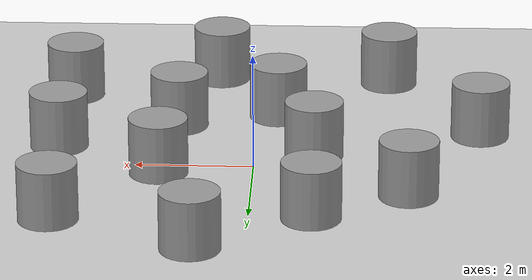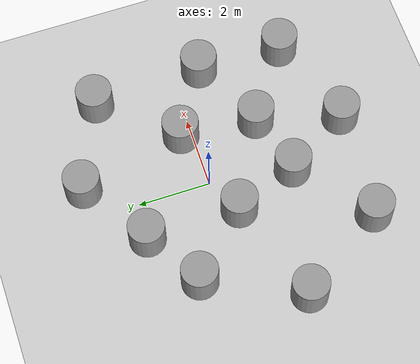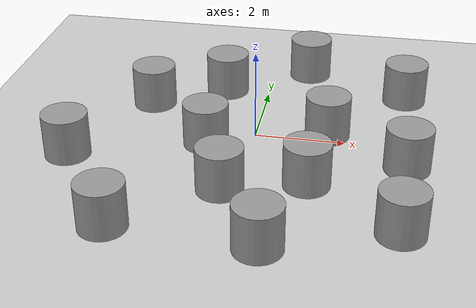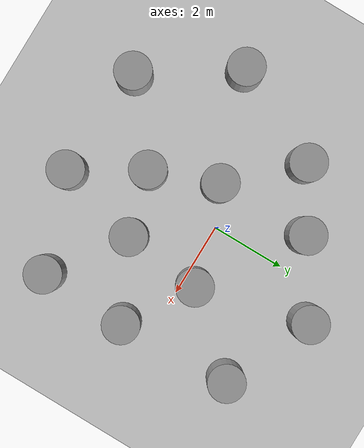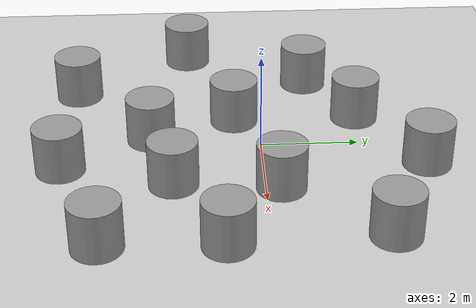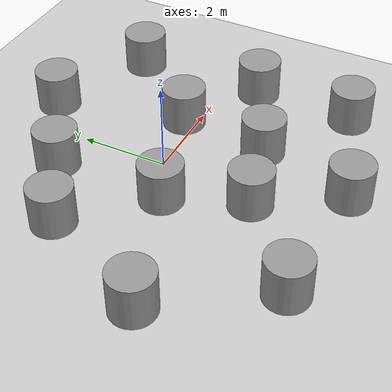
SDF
<sdf version="1.7">
 <world name="default">
  <light name="sun" type="directional">
   <cast_shadows>0</cast_shadows>
   <pose>0 0 10 0 -0 0</pose>
   <diffuse>0.8 0.8 0.8 1</diffuse>
   <specular>0.2 0.2 0.2 1</specular>
   <attenuation>
    <range>1000</range>
    <constant>0.9</constant>
    <linear>0.01</linear>
    <quadratic>0.001</quadratic>
   </attenuation>
   <direction>-0.5 0.1 -0.9</direction>
   <spot><inner_angle>0</inner_angle><outer_angle>0</outer_angle><falloff>0</falloff></spot>
  </light>
  <model name="ground_plane">
   <static>1</static>
   <link name="link">
    <collision name="collision">
     <geometry><plane><normal>0 0 1</normal><size>100 100</size></plane></geometry>
     <surface><friction><ode><mu>100</mu><mu2>50</mu2></ode></friction></surface>
    </collision>
    <visual name="visual">
     <cast_shadows>0</cast_shadows>
     <geometry><plane><normal>0 0 1</normal><size>100 100</size></plane></geometry>
     <material>
      <script><uri>file://media/materials/scripts/gazebo.material</uri><name>Gazebo/Grey</name></script>
     </material>
    </visual>
   </link>
  </model>
  <gravity>0 0 -9.8</gravity>
  <magnetic_field>6e-06 2.3e-05 -4.2e-05</magnetic_field>
  <atmosphere type="adiabatic"/>
  <physics type="ode">
   <max_step_size>0.001</max_step_size>
   <real_time_factor>1</real_time_factor>
   <real_time_update_rate>3000</real_time_update_rate>
  </physics>
  <scene><ambient>0.4 0.4 0.4 1</ambient><background>0.7 0.7 0.7 1</background><shadows>0</shadows></scene>
  <audio><device>default</device></audio>
  <spherical_coordinates>
   <surface_model>EARTH_WGS84</surface_model>
   <latitude_deg>0</latitude_deg>
   <longitude_deg>0</longitude_deg>
   <elevation>0</elevation>
   <heading_deg>0</heading_deg>
  </spherical_coordinates>
  <model name="unit_cylinder">
   <pose>1.36427 -1.79255 0.499992 -3e-06 3e-06 0</pose>
   <link name="link">
    <inertial>
     <mass>1</mass>
     <inertia><ixx>0.145833</ixx><ixy>0</ixy><ixz>0</ixz><iyy>0.145833</iyy><iyz>0</iyz><izz>0.125</izz></inertia>
    </inertial>
    <collision name="collision">
     <geometry><cylinder><radius>0.5</radius><length>1</length></cylinder></geometry>
    </collision>
    <visual name="visual">
     <geometry><cylinder><radius>0.5</radius><length>1</length></cylinder></geometry>
     <material>
      <script><name>Gazebo/Grey</name><uri>file://media/materials/scripts/gazebo.material</uri></script>
     </material>
    </visual>
   </link>
  </model>
  <model name="unit_cylinder_0">
   <pose>1.58285 0.303932 0.499998 3e-06 -3e-06 0</pose>
   <link name="link">
    <inertial>
     <mass>1</mass>
     <inertia><ixx>0.145833</ixx><ixy>0</ixy><ixz>0</ixz><iyy>0.145833</iyy><iyz>0</iyz><izz>0.125</izz></inertia>
    </inertial>
    <collision name="collision">
     <geometry><cylinder><radius>0.5</radius><length>1</length></cylinder></geometry>
    </collision>
    <visual name="visual">
     <geometry><cylinder><radius>0.5</radius><length>1</length></cylinder></geometry>
     <material>
      <script><name>Gazebo/Grey</name><uri>file://media/materials/scripts/gazebo.material</uri></script>
     </material>
    </visual>
   </link>
  </model>
  <model name="unit_cylinder_1">
   <pose>-1.01108 -0.512463 0.499992 -3e-06 3e-06 0</pose>
   <link name="link">
    <inertial>
     <mass>1</mass>
     <inertia><ixx>0.145833</ixx><ixy>0</ixy><ixz>0</ixz><iyy>0.145833</iyy><iyz>0</iyz><izz>0.125</izz></inertia>
    </inertial>
    <collision name="collision">
     <geometry><cylinder><radius>0.5</radius><length>1</length></cylinder></geometry>
    </collision>
    <visual name="visual">
     <geometry><cylinder><radius>0.5</radius><length>1</length></cylinder></geometry>
     <material>
      <script><name>Gazebo/Grey</name><uri>file://media/materials/scripts/gazebo.material</uri></script>
     </material>
    </visual>
   </link>
  </model>
  <model name="unit_cylinder_0_clone">
   <pose>-0.343791 -2.26078 0.499992 -3e-06 3e-06 0</pose>
   <link name="link">
    <inertial>
     <mass>1</mass>
     <inertia><ixx>0.145833</ixx><ixy>0</ixy><ixz>0</ixz><iyy>0.145833</iyy><iyz>0</iyz><izz>0.125</izz></inertia>
    </inertial>
    <collision name="collision">
     <geometry><cylinder><radius>0.5</radius><length>1</length></cylinder></geometry>
    </collision>
    <visual name="visual">
     <geometry><cylinder><radius>0.5</radius><length>1</length></cylinder></geometry>
     <material>
      <script><name>Gazebo/Grey</name><uri>file://media/materials/scripts/gazebo.material</uri></script>
     </material>
    </visual>
   </link>
  </model>
  <model name="unit_cylinder_0_clone_0">
   <pose>-1.02615 2.07085 0.499992 -3e-06 4e-06 0</pose>
   <link name="link">
    <inertial>
     <mass>1</mass>
     <inertia><ixx>0.145833</ixx><ixy>0</ixy><ixz>0</ixz><iyy>0.145833</iyy><iyz>0</iyz><izz>0.125</izz></inertia>
    </inertial>
    <collision name="collision">
     <geometry><cylinder><radius>0.5</radius><length>1</length></cylinder></geometry>
    </collision>
    <visual name="visual">
     <geometry><cylinder><radius>0.5</radius><length>1</length></cylinder></geometry>
     <material>
      <script><name>Gazebo/Grey</name><uri>file://media/materials/scripts/gazebo.material</uri></script>
     </material>
    </visual>
   </link>
  </model>
  <model name="unit_cylinder_0_clone_1">
   <pose>-3.85935 -1.47917 0.499992 -3e-06 4e-06 0</pose>
   <link name="link">
    <inertial>
     <mass>1</mass>
     <inertia><ixx>0.145833</ixx><ixy>0</ixy><ixz>0</ixz><iyy>0.145833</iyy><iyz>0</iyz><izz>0.125</izz></inertia>
    </inertial>
    <collision name="collision">
     <geometry><cylinder><radius>0.5</radius><length>1</length></cylinder></geometry>
    </collision>
    <visual name="visual">
     <geometry><cylinder><radius>0.5</radius><length>1</length></cylinder></geometry>
     <material>
      <script><name>Gazebo/Grey</name><uri>file://media/materials/scripts/gazebo.material</uri></script>
     </material>
    </visual>
   </link>
  </model>
  <model name="unit_cylinder_0_clone_2">
   <pose>0.865643 3.29524 0.499992 -3e-06 4e-06 0</pose>
   <link name="link">
    <inertial>
     <mass>1</mass>
     <inertia><ixx>0.145833</ixx><ixy>0</ixy><ixz>0</ixz><iyy>0.145833</iyy><iyz>0</iyz><izz>0.125</izz></inertia>
    </inertial>
    <collision name="collision">
     <geometry><cylinder><radius>0.5</radius><length>1</length></cylinder></geometry>
    </collision>
    <visual name="visual">
     <geometry><cylinder><radius>0.5</radius><length>1</length></cylinder></geometry>
     <material>
      <script><name>Gazebo/Grey</name><uri>file://media/materials/scripts/gazebo.material</uri></script>
     </material>
    </visual>
   </link>
  </model>
  <model name="unit_cylinder_0_clone_3">
   <pose>3.23881 2.25483 0.499992 -3e-06 4e-06 0</pose>
   <link name="link">
    <inertial>
     <mass>1</mass>
     <inertia><ixx>0.145833</ixx><ixy>0</ixy><ixz>0</ixz><iyy>0.145833</iyy><iyz>0</iyz><izz>0.125</izz></inertia>
    </inertial>
    <collision name="collision">
     <geometry><cylinder><radius>0.5</radius><length>1</length></cylinder></geometry>
    </collision>
    <visual name="visual">
     <geometry><cylinder><radius>0.5</radius><length>1</length></cylinder></geometry>
     <material>
      <script><name>Gazebo/Grey</name><uri>file://media/materials/scripts/gazebo.material</uri></script>
     </material>
    </visual>
   </link>
  </model>
  <model name="unit_cylinder_0_clone_4">
   <pose>-2.61078 1.12173 0.499998 3e-06 4e-06 -0</pose>
   <link name="link">
    <inertial>
     <mass>1</mass>
     <inertia><ixx>0.145833</ixx><ixy>0</ixy><ixz>0</ixz><iyy>0.145833</iyy><iyz>0</iyz><izz>0.125</izz></inertia>
    </inertial>
    <collision name="collision">
     <geometry><cylinder><radius>0.5</radius><length>1</length></cylinder></geometry>
    </collision>
    <visual name="visual">
     <geometry><cylinder><radius>0.5</radius><length>1</length></cylinder></geometry>
     <material>
      <script><name>Gazebo/Grey</name><uri>file://media/materials/scripts/gazebo.material</uri></script>
     </material>
    </visual>
   </link>
  </model>
  <model name="unit_cylinder_0_clone_5">
   <pose>-2.28168 -3.88199 0.499997 3e-06 3e-06 0</pose>
   <link name="link">
    <inertial>
     <mass>1</mass>
     <inertia><ixx>0.145833</ixx><ixy>0</ixy><ixz>0</ixz><iyy>0.145833</iyy><iyz>0</iyz><izz>0.125</izz></inertia>
    </inertial>
    <collision name="collision">
     <geometry><cylinder><radius>0.5</radius><length>1</length></cylinder></geometry>
    </collision>
    <visual name="visual">
     <geometry><cylinder><radius>0.5</radius><length>1</length></cylinder></geometry>
     <material>
      <script><name>Gazebo/Grey</name><uri>file://media/materials/scripts/gazebo.material</uri></script>
     </material>
    </visual>
   </link>
  </model>
  <model name="unit_cylinder_0_clone_6">
   <pose>0.733981 -4.04336 0.499993 -3e-06 -3e-06 0</pose>
   <link name="link">
    <inertial>
     <mass>1</mass>
     <inertia><ixx>0.145833</ixx><ixy>0</ixy><ixz>0</ixz><iyy>0.145833</iyy><iyz>0</iyz><izz>0.125</izz></inertia>
    </inertial>
    <collision name="collision">
     <geometry><cylinder><radius>0.5</radius><length>1</length></cylinder></geometry>
    </collision>
    <visual name="visual">
     <geometry><cylinder><radius>0.5</radius><length>1</length></cylinder></geometry>
     <material>
      <script><name>Gazebo/Grey</name><uri>file://media/materials/scripts/gazebo.material</uri></script>
     </material>
    </visual>
   </link>
  </model>
  <model name="unit_cylinder_0_clone_7">
   <pose>3.37071 -0.803681 0.499997 3e-06 4e-06 -0</pose>
   <link name="link">
    <inertial>
     <mass>1</mass>
     <inertia><ixx>0.145833</ixx><ixy>0</ixy><ixz>0</ixz><iyy>0.145833</iyy><iyz>0</iyz><izz>0.125</izz></inertia>
    </inertial>
    <collision name="collision">
     <geometry><cylinder><radius>0.5</radius><length>1</length></cylinder></geometry>
    </collision>
    <visual name="visual">
     <geometry><cylinder><radius>0.5</radius><length>1</length></cylinder></geometry>
     <material>
      <script><name>Gazebo/Grey</name><uri>file://media/materials/scripts/gazebo.material</uri></script>
     </material>
    </visual>
   </link>
  </model>
  <model name="unit_cylinder_0_clone_8">
   <pose>3.3034 -3.15462 0.499993 -3e-06 -4e-06 -0</pose>
   <link name="link">
    <inertial>
     <mass>1</mass>
     <inertia><ixx>0.145833</ixx><ixy>0</ixy><ixz>0</ixz><iyy>0.145833</iyy><iyz>0</iyz><izz>0.125</izz></inertia>
    </inertial>
    <collision name="collision">
     <geometry><cylinder><radius>0.5</radius><length>1</length></cylinder></geometry>
    </collision>
    <visual name="visual">
     <geometry><cylinder><radius>0.5</radius><length>1</length></cylinder></geometry>
     <material>
      <script><name>Gazebo/Grey</name><uri>file://media/materials/scripts/gazebo.material</uri></script>
     </material>
    </visual>
   </link>
  </model>
 </world>
</sdf>
